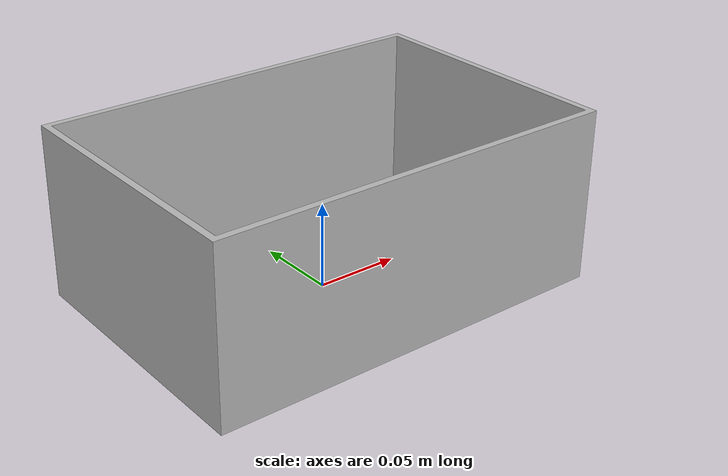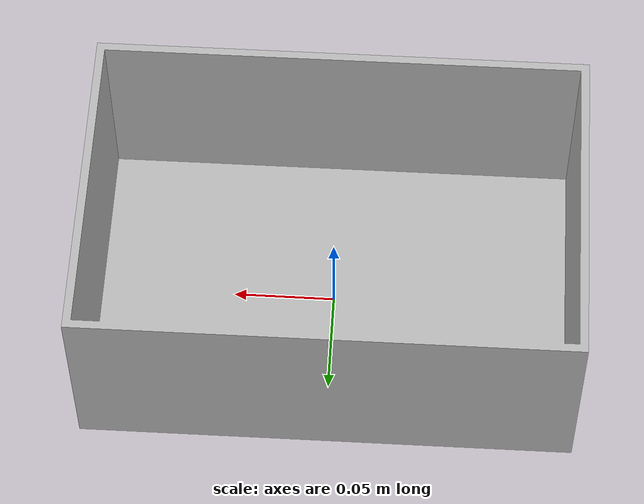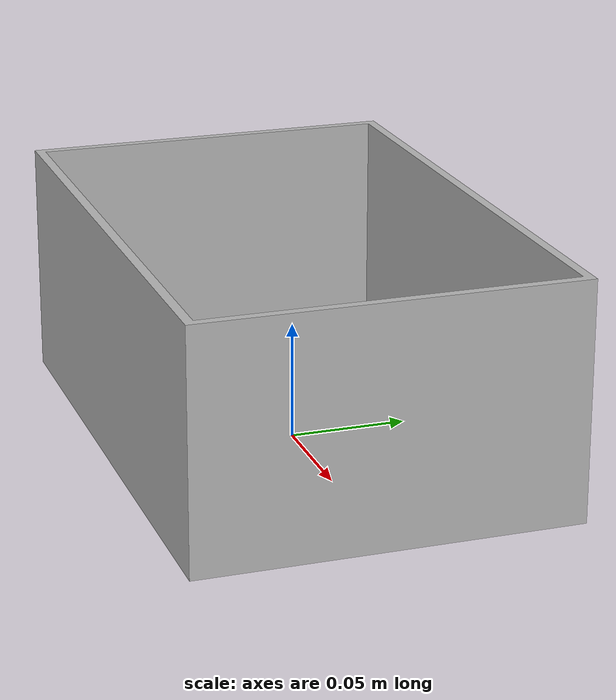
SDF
<?xml version='1.0'?>
<sdf version='1.6'>
  <model name='box_container'>
    <link name='box_base_link'>
      <pose frame=''>0 0 0 0 -0 0</pose>
      <inertial>
        <pose frame=''>-0 -0 0.035108 0 -0 0</pose>
        <mass>0.45466</mass>
        <inertia>
          <ixx>0.0021598</ixx>
          <ixy>2.8912e-20</ixy>
          <ixz>2.5618e-19</ixz>
          <iyy>0.0037333</iyy>
          <iyz>9.5053e-19</iyz>
          <izz>0.0049217</izz>
        </inertia>
      </inertial>
      <self_collide>0</self_collide>
      <enable_wind>0</enable_wind>
      <kinematic>0</kinematic>
      <visual name='box_base_link_visual'>
        <pose frame=''>0 0 0 0 -0 0</pose>
        <geometry>
          <mesh>
            <scale>1 1 1</scale>
            <uri>model://box_container/meshes/box_base_link.STL</uri>
          </mesh>
        </geometry>
        <transparency>0</transparency>
        <cast_shadows>1</cast_shadows>
      </visual>
      <collision name='box_base_link_collision'>
        <laser_retro>0</laser_retro>
        <max_contacts>10</max_contacts>
        <pose frame=''>0 0 0 0 -0 0</pose>
        <geometry>
          <mesh>
            <uri>model://box_container/meshes/box_base_link.STL</uri>
            <scale>1 1 1</scale>
          </mesh>
        </geometry>
        <surface>
          <friction>
            <ode>
              <mu>1</mu>
              <mu2>1</mu2>
              <fdir1>0 0 0</fdir1>
              <slip1>0</slip1>
              <slip2>0</slip2>
            </ode>
            <torsional>
              <coefficient>1</coefficient>
              <patch_radius>0</patch_radius>
              <surface_radius>0</surface_radius>
              <use_patch_radius>1</use_patch_radius>
              <ode>
                <slip>0</slip>
              </ode>
            </torsional>
          </friction>
          <bounce>
            <restitution_coefficient>0</restitution_coefficient>
            <threshold>1e+06</threshold>
          </bounce>
          <contact>
            <collide_without_contact>0</collide_without_contact>
            <collide_without_contact_bitmask>1</collide_without_contact_bitmask>
            <collide_bitmask>1</collide_bitmask>
            <ode>
              <soft_cfm>0</soft_cfm>
              <soft_erp>0.2</soft_erp>
              <kp>1e+13</kp>
              <kd>1</kd>
              <max_vel>0.01</max_vel>
              <min_depth>0.001</min_depth>
            </ode>
            <bullet>
              <split_impulse>1</split_impulse>
              <split_impulse_penetration_threshold>-0.01</split_impulse_penetration_threshold>
              <soft_cfm>0</soft_cfm>
              <soft_erp>0.2</soft_erp>
              <kp>1e+13</kp>
              <kd>1</kd>
            </bullet>
          </contact>
        </surface>
      </collision>
    </link>
    <static>0</static>
    <allow_auto_disable>1</allow_auto_disable>
  </model>
</sdf>
